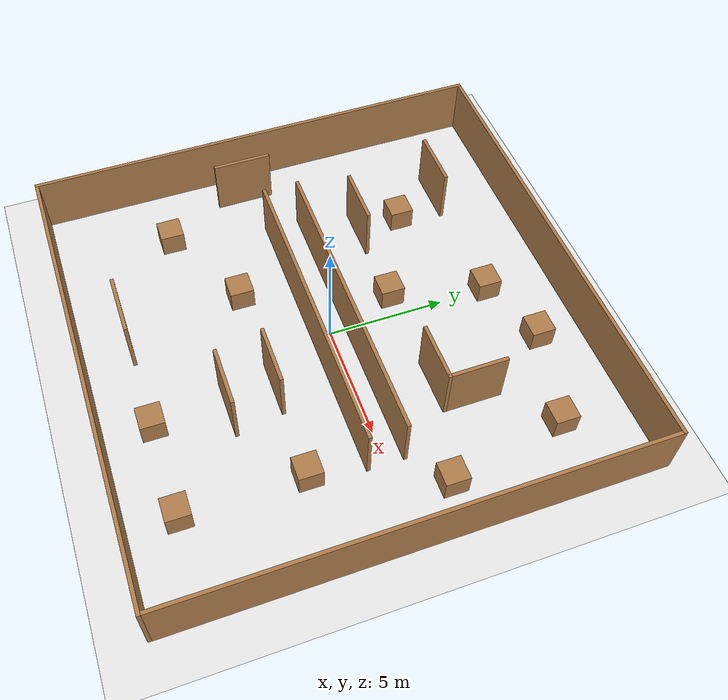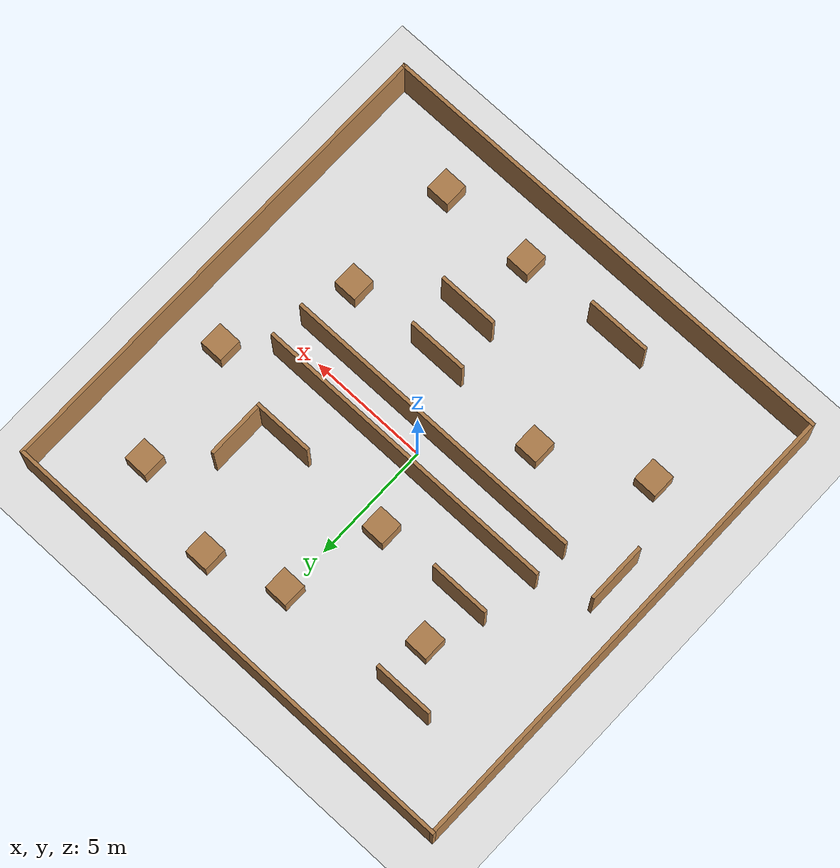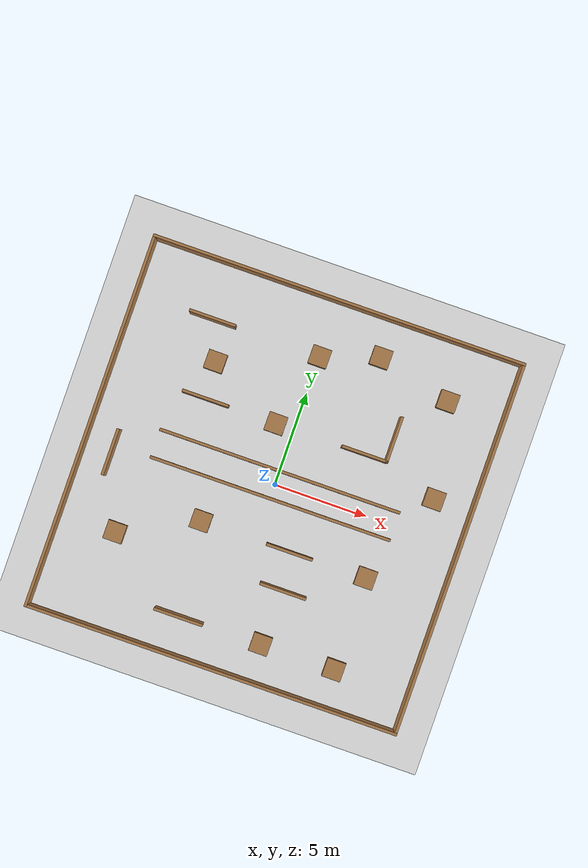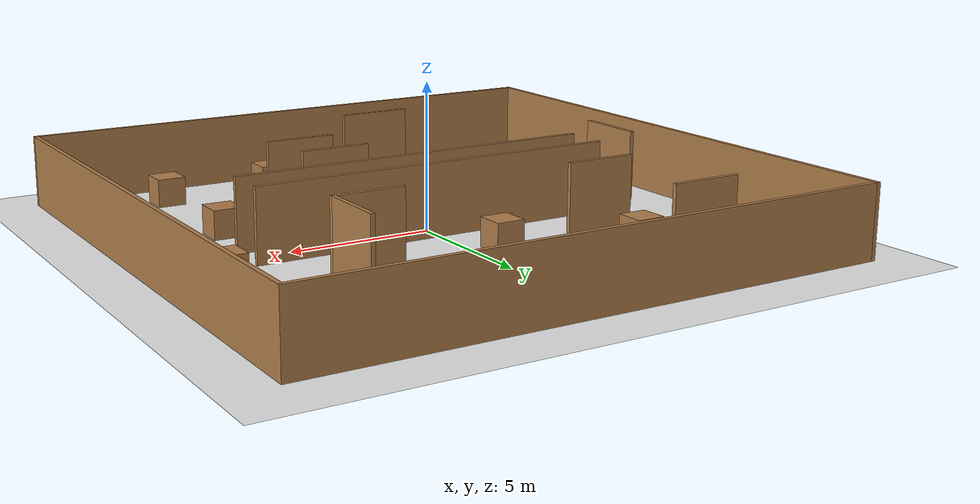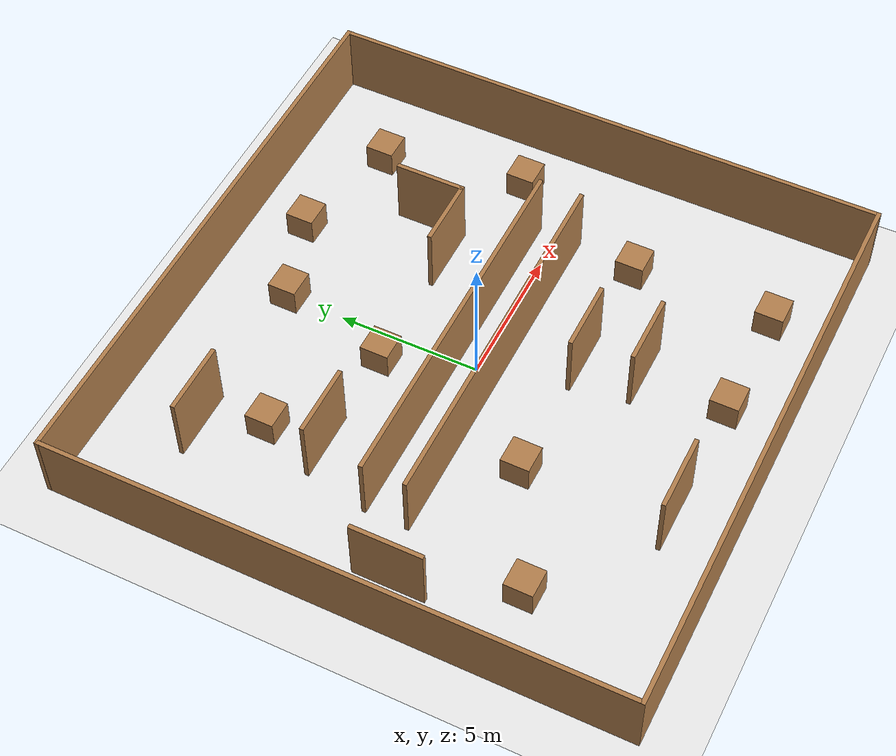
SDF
<sdf version="1.7">
 <world name="default">
  <light name="sun" type="directional">
   <pose>0 0 10 0 -0 0</pose>
   <diffuse>0.8 0.8 0.8 1</diffuse>
   <specular>0.2 0.2 0.2 1</specular>
   <attenuation>
    <range>1000</range>
    <constant>0.9</constant>
    <linear>0.01</linear>
    <quadratic>0.001</quadratic>
   </attenuation>
   <direction>-0.5 0.1 -0.9</direction>
   <spot><inner_angle>0</inner_angle><outer_angle>0</outer_angle><falloff>0</falloff></spot>
  </light>
  <model name="ground_plane">
   <static>1</static>
   <link name="link">
    <collision name="collision">
     <geometry><plane><normal>0 0 1</normal><size>100 100</size></plane></geometry>
     <surface>
      <contact><collide_bitmask>65535</collide_bitmask></contact>
      <friction><ode><mu>100</mu><mu2>50</mu2></ode></friction>
     </surface>
    </collision>
    <visual name="visual">
     <cast_shadows>0</cast_shadows>
     <geometry><plane><normal>0 0 1</normal><size>100 100</size></plane></geometry>
     <material>
      <script><uri>file://media/materials/scripts/gazebo.material</uri><name>Gazebo/White</name></script>
     </material>
    </visual>
   </link>
  </model>
  <gravity>0 0 -9.8</gravity>
  <magnetic_field>6e-06 2.3e-05 -4.2e-05</magnetic_field>
  <atmosphere type="adiabatic"/>
  <physics type="ode">
   <max_step_size>0.001</max_step_size>
   <real_time_factor>1</real_time_factor>
   <real_time_update_rate>1000</real_time_update_rate>
  </physics>
  <scene><ambient>0.4 0.4 0.4 1</ambient><background>0.7 0.7 0.7 1</background><shadows>1</shadows></scene>
  <spherical_coordinates>
   <surface_model>EARTH_WGS84</surface_model>
   <latitude_deg>0</latitude_deg>
   <longitude_deg>0</longitude_deg>
   <elevation>0</elevation>
   <heading_deg>0</heading_deg>
  </spherical_coordinates>
  <model name="complex_env_v2">
   <link name="Wall_10">
    <pose>-5.825 7 0 0 -0 0</pose>
    <visual name="Wall_10_Visual">
     <pose>0 0 1.25 0 -0 0</pose>
     <geometry><box><size>2.5 0.15 2.5</size></box></geometry>
     <material>
      <script><uri>file://media/materials/scripts/gazebo.material</uri><name>Gazebo/Wood</name></script>
      <ambient>1 1 1 1</ambient>
      <shader type="pixel"/>
     </material>
     <meta><layer>0</layer></meta>
    </visual>
    <collision name="Wall_10_Collision">
     <pose>0 0 1.25 0 -0 0</pose>
     <geometry><box><size>2.5 0.15 2.5</size></box></geometry>
     <surface>
      <friction>
       <ode><mu>1</mu><mu2>1</mu2><fdir1>0 0 0</fdir1><slip1>0</slip1><slip2>0</slip2></ode>
       <torsional>
        <coefficient>1</coefficient>
        <patch_radius>0</patch_radius>
        <surface_radius>0</surface_radius>
        <use_patch_radius>1</use_patch_radius>
        <ode><slip>0</slip></ode>
       </torsional>
      </friction>
      <bounce><restitution_coefficient>0</restitution_coefficient><threshold>1e+06</threshold></bounce>
      <contact>
       <collide_without_contact>0</collide_without_contact>
       <collide_without_contact_bitmask>1</collide_without_contact_bitmask>
       <collide_bitmask>1</collide_bitmask>
       <ode>
        <soft_cfm>0</soft_cfm>
        <soft_erp>0.2</soft_erp>
        <kp>1e+13</kp>
        <kd>1</kd>
        <max_vel>0.01</max_vel>
        <min_depth>0</min_depth>
       </ode>
       <bullet>
        <split_impulse>1</split_impulse>
        <split_impulse_penetration_threshold>-0.01</split_impulse_penetration_threshold>
        <soft_cfm>0</soft_cfm>
        <soft_erp>0.2</soft_erp>
        <kp>1e+13</kp>
        <kd>1</kd>
       </bullet>
      </contact>
     </surface>
    </collision>
   </link>
   <link name="Wall_12">
    <pose>-8.5 -1.175 0 0 0 -1.5708</pose>
    <inertial>
     <mass>1</mass>
     <inertia><ixx>1</ixx><ixy>0</ixy><ixz>0</ixz><iyy>1</iyy><iyz>0</iyz><izz>1</izz></inertia>
    </inertial>
    <visual name="Wall_12_Visual">
     <pose>0 0 1.25 0 -0 0</pose>
     <geometry><box><size>2.5 0.15 2.5</size></box></geometry>
     <material>
      <script><uri>file://media/materials/scripts/gazebo.material</uri><name>Gazebo/Wood</name></script>
      <ambient>1 1 1 1</ambient>
      <shader type="pixel"><normal_map>__default__</normal_map></shader>
      <diffuse>1 1 1 1</diffuse>
      <specular>0.2 0.2 0.2 1</specular>
      <emissive>0 0 0 1</emissive>
     </material>
     <meta><layer>0</layer></meta>
    </visual>
    <collision name="Wall_12_Collision">
     <pose>0 0 1.25 0 -0 0</pose>
     <geometry><box><size>2.5 0.15 2.5</size></box></geometry>
     <surface>
      <friction>
       <ode><mu>1</mu><mu2>1</mu2><fdir1>0 0 0</fdir1><slip1>0</slip1><slip2>0</slip2></ode>
       <torsional>
        <coefficient>1</coefficient>
        <patch_radius>0</patch_radius>
        <surface_radius>0</surface_radius>
        <use_patch_radius>1</use_patch_radius>
        <ode><slip>0</slip></ode>
       </torsional>
      </friction>
      <bounce><restitution_coefficient>0</restitution_coefficient><threshold>1e+06</threshold></bounce>
      <contact>
       <collide_without_contact>0</collide_without_contact>
       <collide_without_contact_bitmask>1</collide_without_contact_bitmask>
       <collide_bitmask>1</collide_bitmask>
       <ode>
        <soft_cfm>0</soft_cfm>
        <soft_erp>0.2</soft_erp>
        <kp>1e+13</kp>
        <kd>1</kd>
        <max_vel>0.01</max_vel>
        <min_depth>0</min_depth>
       </ode>
       <bullet>
        <split_impulse>1</split_impulse>
        <split_impulse_penetration_threshold>-0.01</split_impulse_penetration_threshold>
        <soft_cfm>0</soft_cfm>
        <soft_erp>0.2</soft_erp>
        <kp>1e+13</kp>
        <kd>1</kd>
       </bullet>
      </contact>
     </surface>
    </collision>
   </link>
   <link name="Wall_14">
    <pose>-4.825 3.011 0 0 -0 0</pose>
    <visual name="Wall_14_Visual">
     <pose>0 0 1.25 0 -0 0</pose>
     <geometry><box><size>2.5 0.15 2.5</size></box></geometry>
     <material>
      <script><uri>file://media/materials/scripts/gazebo.material</uri><name>Gazebo/Wood</name></script>
      <ambient>1 1 1 1</ambient>
      <shader type="pixel"/>
     </material>
     <meta><layer>0</layer></meta>
    </visual>
    <collision name="Wall_14_Collision">
     <pose>0 0 1.25 0 -0 0</pose>
     <geometry><box><size>2.5 0.15 2.5</size></box></geometry>
     <surface>
      <friction>
       <ode><mu>1</mu><mu2>1</mu2><fdir1>0 0 0</fdir1><slip1>0</slip1><slip2>0</slip2></ode>
       <torsional>
        <coefficient>1</coefficient>
        <patch_radius>0</patch_radius>
        <surface_radius>0</surface_radius>
        <use_patch_radius>1</use_patch_radius>
        <ode><slip>0</slip></ode>
       </torsional>
      </friction>
      <bounce><restitution_coefficient>0</restitution_coefficient><threshold>1e+06</threshold></bounce>
      <contact>
       <collide_without_contact>0</collide_without_contact>
       <collide_without_contact_bitmask>1</collide_without_contact_bitmask>
       <collide_bitmask>1</collide_bitmask>
       <ode>
        <soft_cfm>0</soft_cfm>
        <soft_erp>0.2</soft_erp>
        <kp>1e+13</kp>
        <kd>1</kd>
        <max_vel>0.01</max_vel>
        <min_depth>0</min_depth>
       </ode>
       <bullet>
        <split_impulse>1</split_impulse>
        <split_impulse_penetration_threshold>-0.01</split_impulse_penetration_threshold>
        <soft_cfm>0</soft_cfm>
        <soft_erp>0.2</soft_erp>
        <kp>1e+13</kp>
        <kd>1</kd>
       </bullet>
      </contact>
     </surface>
    </collision>
   </link>
   <link name="Wall_14_clone">
    <pose>0 0.75 0 0 -0 0</pose>
    <inertial>
     <mass>1</mass>
     <inertia><ixx>1</ixx><ixy>0</ixy><ixz>0</ixz><iyy>1</iyy><iyz>0</iyz><izz>1</izz></inertia>
    </inertial>
    <visual name="Wall_14_Visual">
     <pose>0 0 1.25 0 -0 0</pose>
     <geometry><box><size>13 0.15 2.5</size></box></geometry>
     <material>
      <script><uri>file://media/materials/scripts/gazebo.material</uri><name>Gazebo/Wood</name></script>
      <ambient>1 1 1 1</ambient>
      <shader type="pixel"><normal_map>__default__</normal_map></shader>
      <diffuse>1 1 1 1</diffuse>
      <specular>0.2 0.2 0.2 1</specular>
      <emissive>0 0 0 1</emissive>
     </material>
     <meta><layer>0</layer></meta>
    </visual>
    <collision name="Wall_14_Collision">
     <pose>0 0 1.25 0 -0 0</pose>
     <geometry><box><size>13 0.15 2.5</size></box></geometry>
     <surface>
      <friction>
       <ode><mu>1</mu><mu2>1</mu2><fdir1>0 0 0</fdir1><slip1>0</slip1><slip2>0</slip2></ode>
       <torsional>
        <coefficient>1</coefficient>
        <patch_radius>0</patch_radius>
        <surface_radius>0</surface_radius>
        <use_patch_radius>1</use_patch_radius>
        <ode><slip>0</slip></ode>
       </torsional>
      </friction>
      <bounce><restitution_coefficient>0</restitution_coefficient><threshold>1e+06</threshold></bounce>
      <contact>
       <collide_without_contact>0</collide_without_contact>
       <collide_without_contact_bitmask>1</collide_without_contact_bitmask>
       <collide_bitmask>1</collide_bitmask>
       <ode>
        <soft_cfm>0</soft_cfm>
        <soft_erp>0.2</soft_erp>
        <kp>1e+13</kp>
        <kd>1</kd>
        <max_vel>0.01</max_vel>
        <min_depth>0</min_depth>
       </ode>
       <bullet>
        <split_impulse>1</split_impulse>
        <split_impulse_penetration_threshold>-0.01</split_impulse_penetration_threshold>
        <soft_cfm>0</soft_cfm>
        <soft_erp>0.2</soft_erp>
        <kp>1e+13</kp>
        <kd>1</kd>
       </bullet>
      </contact>
     </surface>
    </collision>
   </link>
   <link name="Wall_14_clone_clone">
    <pose>0 -0.75 0 0 -0 0</pose>
    <inertial>
     <mass>1</mass>
     <inertia><ixx>1</ixx><ixy>0</ixy><ixz>0</ixz><iyy>1</iyy><iyz>0</iyz><izz>1</izz></inertia>
    </inertial>
    <visual name="Wall_14_Visual">
     <pose>0 0 1.25 0 -0 0</pose>
     <geometry><box><size>13 0.15 2.5</size></box></geometry>
     <material>
      <script><uri>file://media/materials/scripts/gazebo.material</uri><name>Gazebo/Wood</name></script>
      <ambient>1 1 1 1</ambient>
      <shader type="pixel"><normal_map>__default__</normal_map></shader>
      <diffuse>1 1 1 1</diffuse>
      <specular>0.2 0.2 0.2 1</specular>
      <emissive>0 0 0 1</emissive>
     </material>
     <meta><layer>0</layer></meta>
    </visual>
    <collision name="Wall_14_Collision">
     <pose>0 0 1.25 0 -0 0</pose>
     <geometry><box><size>13 0.15 2.5</size></box></geometry>
     <surface>
      <friction>
       <ode><mu>1</mu><mu2>1</mu2><fdir1>0 0 0</fdir1><slip1>0</slip1><slip2>0</slip2></ode>
       <torsional>
        <coefficient>1</coefficient>
        <patch_radius>0</patch_radius>
        <surface_radius>0</surface_radius>
        <use_patch_radius>1</use_patch_radius>
        <ode><slip>0</slip></ode>
       </torsional>
      </friction>
      <bounce><restitution_coefficient>0</restitution_coefficient><threshold>1e+06</threshold></bounce>
      <contact>
       <collide_without_contact>0</collide_without_contact>
       <collide_without_contact_bitmask>1</collide_without_contact_bitmask>
       <collide_bitmask>1</collide_bitmask>
       <ode>
        <soft_cfm>0</soft_cfm>
        <soft_erp>0.2</soft_erp>
        <kp>1e+13</kp>
        <kd>1</kd>
        <max_vel>0.01</max_vel>
        <min_depth>0</min_depth>
       </ode>
       <bullet>
        <split_impulse>1</split_impulse>
        <split_impulse_penetration_threshold>-0.01</split_impulse_penetration_threshold>
        <soft_cfm>0</soft_cfm>
        <soft_erp>0.2</soft_erp>
        <kp>1e+13</kp>
        <kd>1</kd>
       </bullet>
      </contact>
     </surface>
    </collision>
   </link>
   <link name="Wall_16">
    <pose>-2.451 -8 0 0 -0 0</pose>
    <inertial>
     <mass>1</mass>
     <inertia><ixx>1</ixx><ixy>0</ixy><ixz>0</ixz><iyy>1</iyy><iyz>0</iyz><izz>1</izz></inertia>
    </inertial>
    <visual name="Wall_16_Visual">
     <pose>0 0 1.25 0 -0 0</pose>
     <geometry><box><size>2.65 0.15 2.5</size></box></geometry>
     <material>
      <script><uri>file://media/materials/scripts/gazebo.material</uri><name>Gazebo/Wood</name></script>
      <ambient>1 1 1 1</ambient>
      <shader type="pixel"><normal_map>__default__</normal_map></shader>
      <diffuse>1 1 1 1</diffuse>
      <specular>0.2 0.2 0.2 1</specular>
      <emissive>0 0 0 1</emissive>
     </material>
     <meta><layer>0</layer></meta>
    </visual>
    <collision name="Wall_16_Collision">
     <pose>0 0 1.25 0 -0 0</pose>
     <geometry><box><size>2.65 0.15 2.5</size></box></geometry>
     <surface>
      <friction>
       <ode><mu>1</mu><mu2>1</mu2><fdir1>0 0 0</fdir1><slip1>0</slip1><slip2>0</slip2></ode>
       <torsional>
        <coefficient>1</coefficient>
        <patch_radius>0</patch_radius>
        <surface_radius>0</surface_radius>
        <use_patch_radius>1</use_patch_radius>
        <ode><slip>0</slip></ode>
       </torsional>
      </friction>
      <bounce><restitution_coefficient>0</restitution_coefficient><threshold>1e+06</threshold></bounce>
      <contact>
       <collide_without_contact>0</collide_without_contact>
       <collide_without_contact_bitmask>1</collide_without_contact_bitmask>
       <collide_bitmask>1</collide_bitmask>
       <ode>
        <soft_cfm>0</soft_cfm>
        <soft_erp>0.2</soft_erp>
        <kp>1e+13</kp>
        <kd>1</kd>
        <max_vel>0.01</max_vel>
        <min_depth>0</min_depth>
       </ode>
       <bullet>
        <split_impulse>1</split_impulse>
        <split_impulse_penetration_threshold>-0.01</split_impulse_penetration_threshold>
        <soft_cfm>0</soft_cfm>
        <soft_erp>0.2</soft_erp>
        <kp>1e+13</kp>
        <kd>1</kd>
       </bullet>
      </contact>
     </surface>
    </collision>
   </link>
   <link name="Wall_18">
    <pose>2.175 -5 0 0 -0 0</pose>
    <inertial>
     <mass>1</mass>
     <inertia><ixx>1</ixx><ixy>0</ixy><ixz>0</ixz><iyy>1</iyy><iyz>0</iyz><izz>1</izz></inertia>
    </inertial>
    <visual name="Wall_18_Visual">
     <pose>0 0 1.25 0 -0 0</pose>
     <geometry><box><size>2.5 0.15 2.5</size></box></geometry>
     <material>
      <script><uri>file://media/materials/scripts/gazebo.material</uri><name>Gazebo/Wood</name></script>
      <ambient>1 1 1 1</ambient>
      <shader type="pixel"><normal_map>__default__</normal_map></shader>
      <diffuse>1 1 1 1</diffuse>
      <specular>0.2 0.2 0.2 1</specular>
      <emissive>0 0 0 1</emissive>
     </material>
     <meta><layer>0</layer></meta>
    </visual>
    <collision name="Wall_18_Collision">
     <pose>0 0 1.25 0 -0 0</pose>
     <geometry><box><size>2.5 0.15 2.5</size></box></geometry>
     <surface>
      <friction>
       <ode><mu>1</mu><mu2>1</mu2><fdir1>0 0 0</fdir1><slip1>0</slip1><slip2>0</slip2></ode>
       <torsional>
        <coefficient>1</coefficient>
        <patch_radius>0</patch_radius>
        <surface_radius>0</surface_radius>
        <use_patch_radius>1</use_patch_radius>
        <ode><slip>0</slip></ode>
       </torsional>
      </friction>
      <bounce><restitution_coefficient>0</restitution_coefficient><threshold>1e+06</threshold></bounce>
      <contact>
       <collide_without_contact>0</collide_without_contact>
       <collide_without_contact_bitmask>1</collide_without_contact_bitmask>
       <collide_bitmask>1</collide_bitmask>
       <ode>
        <soft_cfm>0</soft_cfm>
        <soft_erp>0.2</soft_erp>
        <kp>1e+13</kp>
        <kd>1</kd>
        <max_vel>0.01</max_vel>
        <min_depth>0</min_depth>
       </ode>
       <bullet>
        <split_impulse>1</split_impulse>
        <split_impulse_penetration_threshold>-0.01</split_impulse_penetration_threshold>
        <soft_cfm>0</soft_cfm>
        <soft_erp>0.2</soft_erp>
        <kp>1e+13</kp>
        <kd>1</kd>
       </bullet>
      </contact>
     </surface>
    </collision>
   </link>
   <link name="Wall_2">
    <pose>3e-06 10 0 0 -0 0</pose>
    <inertial>
     <mass>1</mass>
     <inertia><ixx>1</ixx><ixy>0</ixy><ixz>0</ixz><iyy>1</iyy><iyz>0</iyz><izz>1</izz></inertia>
    </inertial>
    <visual name="Wall_2_Visual">
     <pose>0 0 1.25 0 -0 0</pose>
     <geometry><box><size>20.15 0.15 2.5</size></box></geometry>
     <material>
      <script><uri>file://media/materials/scripts/gazebo.material</uri><name>Gazebo/Wood</name></script>
      <ambient>1 1 1 1</ambient>
      <shader type="pixel"><normal_map>__default__</normal_map></shader>
     </material>
     <meta><layer>0</layer></meta>
    </visual>
    <collision name="Wall_2_Collision">
     <pose>0 0 1.25 0 -0 0</pose>
     <geometry><box><size>20.15 0.15 2.5</size></box></geometry>
     <surface>
      <friction>
       <ode><mu>1</mu><mu2>1</mu2><fdir1>0 0 0</fdir1><slip1>0</slip1><slip2>0</slip2></ode>
       <torsional>
        <coefficient>1</coefficient>
        <patch_radius>0</patch_radius>
        <surface_radius>0</surface_radius>
        <use_patch_radius>1</use_patch_radius>
        <ode><slip>0</slip></ode>
       </torsional>
      </friction>
      <bounce><restitution_coefficient>0</restitution_coefficient><threshold>1e+06</threshold></bounce>
      <contact>
       <collide_without_contact>0</collide_without_contact>
       <collide_without_contact_bitmask>1</collide_without_contact_bitmask>
       <collide_bitmask>1</collide_bitmask>
       <ode>
        <soft_cfm>0</soft_cfm>
        <soft_erp>0.2</soft_erp>
        <kp>1e+13</kp>
        <kd>1</kd>
        <max_vel>0.01</max_vel>
        <min_depth>0</min_depth>
       </ode>
       <bullet>
        <split_impulse>1</split_impulse>
        <split_impulse_penetration_threshold>-0.01</split_impulse_penetration_threshold>
        <soft_cfm>0</soft_cfm>
        <soft_erp>0.2</soft_erp>
        <kp>1e+13</kp>
        <kd>1</kd>
       </bullet>
      </contact>
     </surface>
    </collision>
   </link>
   <link name="Wall_20">
    <pose>1.825 -3 0 0 -0 0</pose>
    <inertial>
     <mass>1</mass>
     <inertia><ixx>1</ixx><ixy>0</ixy><ixz>0</ixz><iyy>1</iyy><iyz>0</iyz><izz>1</izz></inertia>
    </inertial>
    <visual name="Wall_20_Visual">
     <pose>0 0 1.25 0 -0 0</pose>
     <geometry><box><size>2.5 0.15 2.5</size></box></geometry>
     <material>
      <script><uri>file://media/materials/scripts/gazebo.material</uri><name>Gazebo/Wood</name></script>
      <ambient>1 1 1 1</ambient>
      <shader type="pixel"><normal_map>__default__</normal_map></shader>
      <diffuse>1 1 1 1</diffuse>
      <specular>0.2 0.2 0.2 1</specular>
      <emissive>0 0 0 1</emissive>
     </material>
     <meta><layer>0</layer></meta>
    </visual>
    <collision name="Wall_20_Collision">
     <pose>0 0 1.25 0 -0 0</pose>
     <geometry><box><size>2.5 0.15 2.5</size></box></geometry>
     <surface>
      <friction>
       <ode><mu>1</mu><mu2>1</mu2><fdir1>0 0 0</fdir1><slip1>0</slip1><slip2>0</slip2></ode>
       <torsional>
        <coefficient>1</coefficient>
        <patch_radius>0</patch_radius>
        <surface_radius>0</surface_radius>
        <use_patch_radius>1</use_patch_radius>
        <ode><slip>0</slip></ode>
       </torsional>
      </friction>
      <bounce><restitution_coefficient>0</restitution_coefficient><threshold>1e+06</threshold></bounce>
      <contact>
       <collide_without_contact>0</collide_without_contact>
       <collide_without_contact_bitmask>1</collide_without_contact_bitmask>
       <collide_bitmask>1</collide_bitmask>
       <ode>
        <soft_cfm>0</soft_cfm>
        <soft_erp>0.2</soft_erp>
        <kp>1e+13</kp>
        <kd>1</kd>
        <max_vel>0.01</max_vel>
        <min_depth>0</min_depth>
       </ode>
       <bullet>
        <split_impulse>1</split_impulse>
        <split_impulse_penetration_threshold>-0.01</split_impulse_penetration_threshold>
        <soft_cfm>0</soft_cfm>
        <soft_erp>0.2</soft_erp>
        <kp>1e+13</kp>
        <kd>1</kd>
       </bullet>
      </contact>
     </surface>
    </collision>
   </link>
   <link name="Wall_22">
    <pose>5 4.175 0 0 0 -1.5708</pose>
    <inertial>
     <mass>1</mass>
     <inertia><ixx>1</ixx><ixy>0</ixy><ixz>0</ixz><iyy>1</iyy><iyz>0</iyz><izz>1</izz></inertia>
    </inertial>
    <visual name="Wall_22_Visual">
     <pose>0 0 1.25 0 -0 0</pose>
     <geometry><box><size>2.5 0.15 2.5</size></box></geometry>
     <material>
      <script><uri>file://media/materials/scripts/gazebo.material</uri><name>Gazebo/Wood</name></script>
      <ambient>1 1 1 1</ambient>
      <shader type="pixel"><normal_map>__default__</normal_map></shader>
      <diffuse>1 1 1 1</diffuse>
      <specular>0.2 0.2 0.2 1</specular>
      <emissive>0 0 0 1</emissive>
     </material>
     <meta><layer>0</layer></meta>
    </visual>
    <collision name="Wall_22_Collision">
     <pose>0 0 1.25 0 -0 0</pose>
     <geometry><box><size>2.5 0.15 2.5</size></box></geometry>
     <surface>
      <friction>
       <ode><mu>1</mu><mu2>1</mu2><fdir1>0 0 0</fdir1><slip1>0</slip1><slip2>0</slip2></ode>
       <torsional>
        <coefficient>1</coefficient>
        <patch_radius>0</patch_radius>
        <surface_radius>0</surface_radius>
        <use_patch_radius>1</use_patch_radius>
        <ode><slip>0</slip></ode>
       </torsional>
      </friction>
      <bounce><restitution_coefficient>0</restitution_coefficient><threshold>1e+06</threshold></bounce>
      <contact>
       <collide_without_contact>0</collide_without_contact>
       <collide_without_contact_bitmask>1</collide_without_contact_bitmask>
       <collide_bitmask>1</collide_bitmask>
       <ode>
        <soft_cfm>0</soft_cfm>
        <soft_erp>0.2</soft_erp>
        <kp>1e+13</kp>
        <kd>1</kd>
        <max_vel>0.01</max_vel>
        <min_depth>0</min_depth>
       </ode>
       <bullet>
        <split_impulse>1</split_impulse>
        <split_impulse_penetration_threshold>-0.01</split_impulse_penetration_threshold>
        <soft_cfm>0</soft_cfm>
        <soft_erp>0.2</soft_erp>
        <kp>1e+13</kp>
        <kd>1</kd>
       </bullet>
      </contact>
     </surface>
    </collision>
   </link>
   <link name="Wall_24">
    <pose>3.825 3 0 0 -0 3.14159</pose>
    <inertial>
     <mass>1</mass>
     <inertia><ixx>1</ixx><ixy>0</ixy><ixz>0</ixz><iyy>1</iyy><iyz>0</iyz><izz>1</izz></inertia>
    </inertial>
    <visual name="Wall_24_Visual">
     <pose>0 0 1.25 0 -0 0</pose>
     <geometry><box><size>2.5 0.15 2.5</size></box></geometry>
     <material>
      <script><uri>file://media/materials/scripts/gazebo.material</uri><name>Gazebo/Wood</name></script>
      <ambient>1 1 1 1</ambient>
      <shader type="pixel"><normal_map>__default__</normal_map></shader>
      <diffuse>1 1 1 1</diffuse>
      <specular>0.2 0.2 0.2 1</specular>
      <emissive>0 0 0 1</emissive>
     </material>
     <meta><layer>0</layer></meta>
    </visual>
    <collision name="Wall_24_Collision">
     <pose>0 0 1.25 0 -0 0</pose>
     <geometry><box><size>2.5 0.15 2.5</size></box></geometry>
     <surface>
      <friction>
       <ode><mu>1</mu><mu2>1</mu2><fdir1>0 0 0</fdir1><slip1>0</slip1><slip2>0</slip2></ode>
       <torsional>
        <coefficient>1</coefficient>
        <patch_radius>0</patch_radius>
        <surface_radius>0</surface_radius>
        <use_patch_radius>1</use_patch_radius>
        <ode><slip>0</slip></ode>
       </torsional>
      </friction>
      <bounce><restitution_coefficient>0</restitution_coefficient><threshold>1e+06</threshold></bounce>
      <contact>
       <collide_without_contact>0</collide_without_contact>
       <collide_without_contact_bitmask>1</collide_without_contact_bitmask>
       <collide_bitmask>1</collide_bitmask>
       <ode>
        <soft_cfm>0</soft_cfm>
        <soft_erp>0.2</soft_erp>
        <kp>1e+13</kp>
        <kd>1</kd>
        <max_vel>0.01</max_vel>
        <min_depth>0</min_depth>
       </ode>
       <bullet>
        <split_impulse>1</split_impulse>
        <split_impulse_penetration_threshold>-0.01</split_impulse_penetration_threshold>
        <soft_cfm>0</soft_cfm>
        <soft_erp>0.2</soft_erp>
        <kp>1e+13</kp>
        <kd>1</kd>
       </bullet>
      </contact>
     </surface>
    </collision>
   </link>
   <link name="Wall_4">
    <pose>-10 3e-06 0 0 0 -1.5708</pose>
    <inertial>
     <mass>1</mass>
     <inertia><ixx>1</ixx><ixy>0</ixy><ixz>0</ixz><iyy>1</iyy><iyz>0</iyz><izz>1</izz></inertia>
    </inertial>
    <visual name="Wall_4_Visual">
     <pose>0 0 1.25 0 -0 0</pose>
     <geometry><box><size>20.15 0.15 2.5</size></box></geometry>
     <material>
      <script><uri>file://media/materials/scripts/gazebo.material</uri><name>Gazebo/Wood</name></script>
      <ambient>1 1 1 1</ambient>
      <shader type="pixel"><normal_map>__default__</normal_map></shader>
     </material>
     <meta><layer>0</layer></meta>
    </visual>
    <collision name="Wall_4_Collision">
     <pose>0 0 1.25 0 -0 0</pose>
     <geometry><box><size>20.15 0.15 2.5</size></box></geometry>
     <surface>
      <friction>
       <ode><mu>1</mu><mu2>1</mu2><fdir1>0 0 0</fdir1><slip1>0</slip1><slip2>0</slip2></ode>
       <torsional>
        <coefficient>1</coefficient>
        <patch_radius>0</patch_radius>
        <surface_radius>0</surface_radius>
        <use_patch_radius>1</use_patch_radius>
        <ode><slip>0</slip></ode>
       </torsional>
      </friction>
      <bounce><restitution_coefficient>0</restitution_coefficient><threshold>1e+06</threshold></bounce>
      <contact>
       <collide_without_contact>0</collide_without_contact>
       <collide_without_contact_bitmask>1</collide_without_contact_bitmask>
       <collide_bitmask>1</collide_bitmask>
       <ode>
        <soft_cfm>0</soft_cfm>
        <soft_erp>0.2</soft_erp>
        <kp>1e+13</kp>
        <kd>1</kd>
        <max_vel>0.01</max_vel>
        <min_depth>0</min_depth>
       </ode>
       <bullet>
        <split_impulse>1</split_impulse>
        <split_impulse_penetration_threshold>-0.01</split_impulse_penetration_threshold>
        <soft_cfm>0</soft_cfm>
        <soft_erp>0.2</soft_erp>
        <kp>1e+13</kp>
        <kd>1</kd>
       </bullet>
      </contact>
     </surface>
    </collision>
   </link>
   <link name="Wall_6">
    <pose>-3e-06 -10 0 0 -0 0</pose>
    <inertial>
     <mass>1</mass>
     <inertia><ixx>1</ixx><ixy>0</ixy><ixz>0</ixz><iyy>1</iyy><iyz>0</iyz><izz>1</izz></inertia>
    </inertial>
    <visual name="Wall_6_Visual">
     <pose>0 0 1.25 0 -0 0</pose>
     <geometry><box><size>20.15 0.15 2.5</size></box></geometry>
     <material>
      <script><uri>file://media/materials/scripts/gazebo.material</uri><name>Gazebo/Wood</name></script>
      <ambient>1 1 1 1</ambient>
      <shader type="pixel"><normal_map>__default__</normal_map></shader>
     </material>
     <meta><layer>0</layer></meta>
    </visual>
    <collision name="Wall_6_Collision">
     <pose>0 0 1.25 0 -0 0</pose>
     <geometry><box><size>20.15 0.15 2.5</size></box></geometry>
     <surface>
      <friction>
       <ode><mu>1</mu><mu2>1</mu2><fdir1>0 0 0</fdir1><slip1>0</slip1><slip2>0</slip2></ode>
       <torsional>
        <coefficient>1</coefficient>
        <patch_radius>0</patch_radius>
        <surface_radius>0</surface_radius>
        <use_patch_radius>1</use_patch_radius>
        <ode><slip>0</slip></ode>
       </torsional>
      </friction>
      <bounce><restitution_coefficient>0</restitution_coefficient><threshold>1e+06</threshold></bounce>
      <contact>
       <collide_without_contact>0</collide_without_contact>
       <collide_without_contact_bitmask>1</collide_without_contact_bitmask>
       <collide_bitmask>1</collide_bitmask>
       <ode>
        <soft_cfm>0</soft_cfm>
        <soft_erp>0.2</soft_erp>
        <kp>1e+13</kp>
        <kd>1</kd>
        <max_vel>0.01</max_vel>
        <min_depth>0</min_depth>
       </ode>
       <bullet>
        <split_impulse>1</split_impulse>
        <split_impulse_penetration_threshold>-0.01</split_impulse_penetration_threshold>
        <soft_cfm>0</soft_cfm>
        <soft_erp>0.2</soft_erp>
        <kp>1e+13</kp>
        <kd>1</kd>
       </bullet>
      </contact>
     </surface>
    </collision>
   </link>
   <link name="Wall_8">
    <pose>10 -2e-06 0 0 0 -1.5708</pose>
    <visual name="Wall_8_Visual">
     <pose>0 0 1.25 0 -0 0</pose>
     <geometry><box><size>20.15 0.15 2.5</size></box></geometry>
     <material>
      <script><uri>file://media/materials/scripts/gazebo.material</uri><name>Gazebo/Wood</name></script>
      <ambient>1 1 1 1</ambient>
      <shader type="pixel"/>
     </material>
     <meta><layer>0</layer></meta>
    </visual>
    <collision name="Wall_8_Collision">
     <pose>0 0 1.25 0 -0 0</pose>
     <geometry><box><size>20.15 0.15 2.5</size></box></geometry>
     <surface>
      <friction>
       <ode><mu>1</mu><mu2>1</mu2><fdir1>0 0 0</fdir1><slip1>0</slip1><slip2>0</slip2></ode>
       <torsional>
        <coefficient>1</coefficient>
        <patch_radius>0</patch_radius>
        <surface_radius>0</surface_radius>
        <use_patch_radius>1</use_patch_radius>
        <ode><slip>0</slip></ode>
       </torsional>
      </friction>
      <bounce><restitution_coefficient>0</restitution_coefficient><threshold>1e+06</threshold></bounce>
      <contact>
       <collide_without_contact>0</collide_without_contact>
       <collide_without_contact_bitmask>1</collide_without_contact_bitmask>
       <collide_bitmask>1</collide_bitmask>
       <ode>
        <soft_cfm>0</soft_cfm>
        <soft_erp>0.2</soft_erp>
        <kp>1e+13</kp>
        <kd>1</kd>
        <max_vel>0.01</max_vel>
        <min_depth>0</min_depth>
       </ode>
       <bullet>
        <split_impulse>1</split_impulse>
        <split_impulse_penetration_threshold>-0.01</split_impulse_penetration_threshold>
        <soft_cfm>0</soft_cfm>
        <soft_erp>0.2</soft_erp>
        <kp>1e+13</kp>
        <kd>1</kd>
       </bullet>
      </contact>
     </surface>
    </collision>
   </link>
   <link name="link_0">
    <inertial>
     <mass>1</mass>
     <inertia>
      <ixx>0.166667</ixx>
      <ixy>0</ixy>
      <ixz>0</ixz>
      <iyy>0.166667</iyy>
      <iyz>0</iyz>
      <izz>0.166667</izz>
     </inertia>
    </inertial>
    <pose>-5 5 0.5 0 -0 1.56388</pose>
    <visual name="visual">
     <geometry><box><size>1 1 1</size></box></geometry>
     <material>
      <lighting>1</lighting>
      <script><uri>file://media/materials/scripts/gazebo.material</uri><name>Gazebo/Wood</name></script>
      <shader type="pixel"><normal_map>__default__</normal_map></shader>
      <ambient>0.3 0.3 0.3 1</ambient>
      <diffuse>0.7 0.7 0.7 1</diffuse>
      <specular>0.01 0.01 0.01 1</specular>
      <emissive>0 0 0 1</emissive>
     </material>
    </visual>
    <collision name="collision">
     <geometry><box><size>1 1 1</size></box></geometry>
     <surface>
      <friction>
       <ode><mu>1</mu><mu2>1</mu2><fdir1>0 0 0</fdir1><slip1>0</slip1><slip2>0</slip2></ode>
       <torsional>
        <coefficient>1</coefficient>
        <patch_radius>0</patch_radius>
        <surface_radius>0</surface_radius>
        <use_patch_radius>1</use_patch_radius>
        <ode><slip>0</slip></ode>
       </torsional>
      </friction>
      <bounce><restitution_coefficient>0</restitution_coefficient><threshold>1e+06</threshold></bounce>
      <contact>
       <collide_without_contact>0</collide_without_contact>
       <collide_without_contact_bitmask>1</collide_without_contact_bitmask>
       <collide_bitmask>1</collide_bitmask>
       <ode>
        <soft_cfm>0</soft_cfm>
        <soft_erp>0.2</soft_erp>
        <kp>1e+13</kp>
        <kd>1</kd>
        <max_vel>0.01</max_vel>
        <min_depth>0</min_depth>
       </ode>
       <bullet>
        <split_impulse>1</split_impulse>
        <split_impulse_penetration_threshold>-0.01</split_impulse_penetration_threshold>
        <soft_cfm>0</soft_cfm>
        <soft_erp>0.2</soft_erp>
        <kp>1e+13</kp>
        <kd>1</kd>
       </bullet>
      </contact>
     </surface>
    </collision>
   </link>
   <link name="link_1">
    <inertial>
     <mass>1</mass>
     <inertia>
      <ixx>0.166667</ixx>
      <ixy>0</ixy>
      <ixz>0</ixz>
      <iyy>0.166667</iyy>
      <iyz>0</iyz>
      <izz>0.166667</izz>
     </inertia>
    </inertial>
    <pose>7 7 0.5 0 -0 1.56388</pose>
    <visual name="visual">
     <geometry><box><size>1 1 1</size></box></geometry>
     <material>
      <lighting>1</lighting>
      <script><uri>file://media/materials/scripts/gazebo.material</uri><name>Gazebo/Wood</name></script>
      <shader type="pixel"><normal_map>__default__</normal_map></shader>
      <ambient>0.3 0.3 0.3 1</ambient>
      <diffuse>0.7 0.7 0.7 1</diffuse>
      <specular>0.01 0.01 0.01 1</specular>
      <emissive>0 0 0 1</emissive>
     </material>
    </visual>
    <collision name="collision">
     <geometry><box><size>1 1 1</size></box></geometry>
     <surface>
      <friction>
       <ode><mu>1</mu><mu2>1</mu2><fdir1>0 0 0</fdir1><slip1>0</slip1><slip2>0</slip2></ode>
       <torsional>
        <coefficient>1</coefficient>
        <patch_radius>0</patch_radius>
        <surface_radius>0</surface_radius>
        <use_patch_radius>1</use_patch_radius>
        <ode><slip>0</slip></ode>
       </torsional>
      </friction>
      <bounce><restitution_coefficient>0</restitution_coefficient><threshold>1e+06</threshold></bounce>
      <contact>
       <collide_without_contact>0</collide_without_contact>
       <collide_without_contact_bitmask>1</collide_without_contact_bitmask>
       <collide_bitmask>1</collide_bitmask>
       <ode>
        <soft_cfm>0</soft_cfm>
        <soft_erp>0.2</soft_erp>
        <kp>1e+13</kp>
        <kd>1</kd>
        <max_vel>0.01</max_vel>
        <min_depth>0</min_depth>
       </ode>
       <bullet>
        <split_impulse>1</split_impulse>
        <split_impulse_penetration_threshold>-0.01</split_impulse_penetration_threshold>
        <soft_cfm>0</soft_cfm>
        <soft_erp>0.2</soft_erp>
        <kp>1e+13</kp>
        <kd>1</kd>
       </bullet>
      </contact>
     </surface>
    </collision>
   </link>
   <link name="link_10">
    <inertial>
     <mass>1</mass>
     <inertia>
      <ixx>0.166667</ixx>
      <ixy>0</ixy>
      <ixz>0</ixz>
      <iyy>0.166667</iyy>
      <iyz>0</iyz>
      <izz>0.166667</izz>
     </inertia>
    </inertial>
    <pose>6 -8 0.5 0 -0 1.56388</pose>
    <visual name="visual">
     <geometry><box><size>1 1 1</size></box></geometry>
     <material>
      <lighting>1</lighting>
      <script><uri>file://media/materials/scripts/gazebo.material</uri><name>Gazebo/Wood</name></script>
      <shader type="pixel"><normal_map>__default__</normal_map></shader>
      <ambient>0.3 0.3 0.3 1</ambient>
      <diffuse>0.7 0.7 0.7 1</diffuse>
      <specular>0.01 0.01 0.01 1</specular>
      <emissive>0 0 0 1</emissive>
     </material>
    </visual>
    <collision name="collision">
     <geometry><box><size>1 1 1</size></box></geometry>
     <surface>
      <friction>
       <ode><mu>1</mu><mu2>1</mu2><fdir1>0 0 0</fdir1><slip1>0</slip1><slip2>0</slip2></ode>
       <torsional>
        <coefficient>1</coefficient>
        <patch_radius>0</patch_radius>
        <surface_radius>0</surface_radius>
        <use_patch_radius>1</use_patch_radius>
        <ode><slip>0</slip></ode>
       </torsional>
      </friction>
      <bounce><restitution_coefficient>0</restitution_coefficient><threshold>1e+06</threshold></bounce>
      <contact>
       <collide_without_contact>0</collide_without_contact>
       <collide_without_contact_bitmask>1</collide_without_contact_bitmask>
       <collide_bitmask>1</collide_bitmask>
       <ode>
        <soft_cfm>0</soft_cfm>
        <soft_erp>0.2</soft_erp>
        <kp>1e+13</kp>
        <kd>1</kd>
        <max_vel>0.01</max_vel>
        <min_depth>0</min_depth>
       </ode>
       <bullet>
        <split_impulse>1</split_impulse>
        <split_impulse_penetration_threshold>-0.01</split_impulse_penetration_threshold>
        <soft_cfm>0</soft_cfm>
        <soft_erp>0.2</soft_erp>
        <kp>1e+13</kp>
        <kd>1</kd>
       </bullet>
      </contact>
     </surface>
    </collision>
   </link>
   <link name="link_11">
    <inertial>
     <mass>1</mass>
     <inertia>
      <ixx>0.166667</ixx>
      <ixy>0</ixy>
      <ixz>0</ixz>
      <iyy>0.166667</iyy>
      <iyz>0</iyz>
      <izz>0.166667</izz>
     </inertia>
    </inertial>
    <pose>6 -3 0.5 0 -0 1.56388</pose>
    <visual name="visual">
     <geometry><box><size>1 1 1</size></box></geometry>
     <material>
      <lighting>1</lighting>
      <script><uri>file://media/materials/scripts/gazebo.material</uri><name>Gazebo/Wood</name></script>
      <shader type="pixel"><normal_map>__default__</normal_map></shader>
      <ambient>0.3 0.3 0.3 1</ambient>
      <diffuse>0.7 0.7 0.7 1</diffuse>
      <specular>0.01 0.01 0.01 1</specular>
      <emissive>0 0 0 1</emissive>
     </material>
    </visual>
    <collision name="collision">
     <geometry><box><size>1 1 1</size></box></geometry>
     <surface>
      <friction>
       <ode><mu>1</mu><mu2>1</mu2><fdir1>0 0 0</fdir1><slip1>0</slip1><slip2>0</slip2></ode>
       <torsional>
        <coefficient>1</coefficient>
        <patch_radius>0</patch_radius>
        <surface_radius>0</surface_radius>
        <use_patch_radius>1</use_patch_radius>
        <ode><slip>0</slip></ode>
       </torsional>
      </friction>
      <bounce><restitution_coefficient>0</restitution_coefficient><threshold>1e+06</threshold></bounce>
      <contact>
       <collide_without_contact>0</collide_without_contact>
       <collide_without_contact_bitmask>1</collide_without_contact_bitmask>
       <collide_bitmask>1</collide_bitmask>
       <ode>
        <soft_cfm>0</soft_cfm>
        <soft_erp>0.2</soft_erp>
        <kp>1e+13</kp>
        <kd>1</kd>
        <max_vel>0.01</max_vel>
        <min_depth>0</min_depth>
       </ode>
       <bullet>
        <split_impulse>1</split_impulse>
        <split_impulse_penetration_threshold>-0.01</split_impulse_penetration_threshold>
        <soft_cfm>0</soft_cfm>
        <soft_erp>0.2</soft_erp>
        <kp>1e+13</kp>
        <kd>1</kd>
       </bullet>
      </contact>
     </surface>
    </collision>
   </link>
   <link name="link_13">
    <inertial>
     <mass>1</mass>
     <inertia>
      <ixx>0.166667</ixx>
      <ixy>0</ixy>
      <ixz>0</ixz>
      <iyy>0.166667</iyy>
      <iyz>0</iyz>
      <izz>0.166667</izz>
     </inertia>
    </inertial>
    <pose>8 2 0.5 0 -0 1.56388</pose>
    <visual name="visual">
     <geometry><box><size>1 1 1</size></box></geometry>
     <material>
      <lighting>1</lighting>
      <script><uri>file://media/materials/scripts/gazebo.material</uri><name>Gazebo/Wood</name></script>
      <shader type="pixel"><normal_map>__default__</normal_map></shader>
      <ambient>0.3 0.3 0.3 1</ambient>
      <diffuse>0.7 0.7 0.7 1</diffuse>
      <specular>0.01 0.01 0.01 1</specular>
      <emissive>0 0 0 1</emissive>
     </material>
    </visual>
    <collision name="collision">
     <geometry><box><size>1 1 1</size></box></geometry>
     <surface>
      <friction>
       <ode><mu>1</mu><mu2>1</mu2><fdir1>0 0 0</fdir1><slip1>0</slip1><slip2>0</slip2></ode>
       <torsional>
        <coefficient>1</coefficient>
        <patch_radius>0</patch_radius>
        <surface_radius>0</surface_radius>
        <use_patch_radius>1</use_patch_radius>
        <ode><slip>0</slip></ode>
       </torsional>
      </friction>
      <bounce><restitution_coefficient>0</restitution_coefficient><threshold>1e+06</threshold></bounce>
      <contact>
       <collide_without_contact>0</collide_without_contact>
       <collide_without_contact_bitmask>1</collide_without_contact_bitmask>
       <collide_bitmask>1</collide_bitmask>
       <ode>
        <soft_cfm>0</soft_cfm>
        <soft_erp>0.2</soft_erp>
        <kp>1e+13</kp>
        <kd>1</kd>
        <max_vel>0.01</max_vel>
        <min_depth>0</min_depth>
       </ode>
       <bullet>
        <split_impulse>1</split_impulse>
        <split_impulse_penetration_threshold>-0.01</split_impulse_penetration_threshold>
        <soft_cfm>0</soft_cfm>
        <soft_erp>0.2</soft_erp>
        <kp>1e+13</kp>
        <kd>1</kd>
       </bullet>
      </contact>
     </surface>
    </collision>
   </link>
   <link name="link_2">
    <inertial>
     <mass>1</mass>
     <inertia>
      <ixx>0.166667</ixx>
      <ixy>0</ixy>
      <ixz>0</ixz>
      <iyy>0.166667</iyy>
      <iyz>0</iyz>
      <izz>0.166667</izz>
     </inertia>
    </inertial>
    <pose>3 8 0.5 0 -0 1.56388</pose>
    <visual name="visual">
     <geometry><box><size>1 1 1</size></box></geometry>
     <material>
      <lighting>1</lighting>
      <script><uri>file://media/materials/scripts/gazebo.material</uri><name>Gazebo/Wood</name></script>
      <shader type="pixel"><normal_map>__default__</normal_map></shader>
      <ambient>0.3 0.3 0.3 1</ambient>
      <diffuse>0.7 0.7 0.7 1</diffuse>
      <specular>0.01 0.01 0.01 1</specular>
      <emissive>0 0 0 1</emissive>
     </material>
    </visual>
    <collision name="collision">
     <geometry><box><size>1 1 1</size></box></geometry>
     <surface>
      <friction>
       <ode><mu>1</mu><mu2>1</mu2><fdir1>0 0 0</fdir1><slip1>0</slip1><slip2>0</slip2></ode>
       <torsional>
        <coefficient>1</coefficient>
        <patch_radius>0</patch_radius>
        <surface_radius>0</surface_radius>
        <use_patch_radius>1</use_patch_radius>
        <ode><slip>0</slip></ode>
       </torsional>
      </friction>
      <bounce><restitution_coefficient>0</restitution_coefficient><threshold>1e+06</threshold></bounce>
      <contact>
       <collide_without_contact>0</collide_without_contact>
       <collide_without_contact_bitmask>1</collide_without_contact_bitmask>
       <collide_bitmask>1</collide_bitmask>
       <ode>
        <soft_cfm>0</soft_cfm>
        <soft_erp>0.2</soft_erp>
        <kp>1e+13</kp>
        <kd>1</kd>
        <max_vel>0.01</max_vel>
        <min_depth>0</min_depth>
       </ode>
       <bullet>
        <split_impulse>1</split_impulse>
        <split_impulse_penetration_threshold>-0.01</split_impulse_penetration_threshold>
        <soft_cfm>0</soft_cfm>
        <soft_erp>0.2</soft_erp>
        <kp>1e+13</kp>
        <kd>1</kd>
       </bullet>
      </contact>
     </surface>
    </collision>
   </link>
   <link name="link_3">
    <inertial>
     <mass>1</mass>
     <inertia>
      <ixx>0.166667</ixx>
      <ixy>0</ixy>
      <ixz>0</ixz>
      <iyy>0.166667</iyy>
      <iyz>0</iyz>
      <izz>0.166667</izz>
     </inertia>
    </inertial>
    <pose>1e-06 7 0.5 0 -0 1.56388</pose>
    <visual name="visual">
     <geometry><box><size>1 1 1</size></box></geometry>
     <material>
      <lighting>1</lighting>
      <script><uri>file://media/materials/scripts/gazebo.material</uri><name>Gazebo/Wood</name></script>
      <shader type="pixel"><normal_map>__default__</normal_map></shader>
      <ambient>0.3 0.3 0.3 1</ambient>
      <diffuse>0.7 0.7 0.7 1</diffuse>
      <specular>0.01 0.01 0.01 1</specular>
      <emissive>0 0 0 1</emissive>
     </material>
    </visual>
    <collision name="collision">
     <geometry><box><size>1 1 1</size></box></geometry>
     <surface>
      <friction>
       <ode><mu>1</mu><mu2>1</mu2><fdir1>0 0 0</fdir1><slip1>0</slip1><slip2>0</slip2></ode>
       <torsional>
        <coefficient>1</coefficient>
        <patch_radius>0</patch_radius>
        <surface_radius>0</surface_radius>
        <use_patch_radius>1</use_patch_radius>
        <ode><slip>0</slip></ode>
       </torsional>
      </friction>
      <bounce><restitution_coefficient>0</restitution_coefficient><threshold>1e+06</threshold></bounce>
      <contact>
       <collide_without_contact>0</collide_without_contact>
       <collide_without_contact_bitmask>1</collide_without_contact_bitmask>
       <collide_bitmask>1</collide_bitmask>
       <ode>
        <soft_cfm>0</soft_cfm>
        <soft_erp>0.2</soft_erp>
        <kp>1e+13</kp>
        <kd>1</kd>
        <max_vel>0.01</max_vel>
        <min_depth>0</min_depth>
       </ode>
       <bullet>
        <split_impulse>1</split_impulse>
        <split_impulse_penetration_threshold>-0.01</split_impulse_penetration_threshold>
        <soft_cfm>0</soft_cfm>
        <soft_erp>0.2</soft_erp>
        <kp>1e+13</kp>
        <kd>1</kd>
       </bullet>
      </contact>
     </surface>
    </collision>
   </link>
   <link name="link_4">
    <inertial>
     <mass>1</mass>
     <inertia>
      <ixx>0.166667</ixx>
      <ixy>0</ixy>
      <ixz>0</ixz>
      <iyy>0.166667</iyy>
      <iyz>0</iyz>
      <izz>0.166667</izz>
     </inertia>
    </inertial>
    <pose>-7 -5 0.5 0 -0 1.56388</pose>
    <visual name="visual">
     <geometry><box><size>1 1 1</size></box></geometry>
     <material>
      <lighting>1</lighting>
      <script><uri>file://media/materials/scripts/gazebo.material</uri><name>Gazebo/Wood</name></script>
      <shader type="pixel"><normal_map>__default__</normal_map></shader>
      <ambient>0.3 0.3 0.3 1</ambient>
      <diffuse>0.7 0.7 0.7 1</diffuse>
      <specular>0.01 0.01 0.01 1</specular>
      <emissive>0 0 0 1</emissive>
     </material>
    </visual>
    <collision name="collision">
     <geometry><box><size>1 1 1</size></box></geometry>
     <surface>
      <friction>
       <ode><mu>1</mu><mu2>1</mu2><fdir1>0 0 0</fdir1><slip1>0</slip1><slip2>0</slip2></ode>
       <torsional>
        <coefficient>1</coefficient>
        <patch_radius>0</patch_radius>
        <surface_radius>0</surface_radius>
        <use_patch_radius>1</use_patch_radius>
        <ode><slip>0</slip></ode>
       </torsional>
      </friction>
      <bounce><restitution_coefficient>0</restitution_coefficient><threshold>1e+06</threshold></bounce>
      <contact>
       <collide_without_contact>0</collide_without_contact>
       <collide_without_contact_bitmask>1</collide_without_contact_bitmask>
       <collide_bitmask>1</collide_bitmask>
       <ode>
        <soft_cfm>0</soft_cfm>
        <soft_erp>0.2</soft_erp>
        <kp>1e+13</kp>
        <kd>1</kd>
        <max_vel>0.01</max_vel>
        <min_depth>0</min_depth>
       </ode>
       <bullet>
        <split_impulse>1</split_impulse>
        <split_impulse_penetration_threshold>-0.01</split_impulse_penetration_threshold>
        <soft_cfm>0</soft_cfm>
        <soft_erp>0.2</soft_erp>
        <kp>1e+13</kp>
        <kd>1</kd>
       </bullet>
      </contact>
     </surface>
    </collision>
   </link>
   <link name="link_5">
    <inertial>
     <mass>1</mass>
     <inertia>
      <ixx>0.166667</ixx>
      <ixy>0</ixy>
      <ixz>0</ixz>
      <iyy>0.166667</iyy>
      <iyz>0</iyz>
      <izz>0.166667</izz>
     </inertia>
    </inertial>
    <pose>-3 -3 0.5 0 -0 1.56388</pose>
    <visual name="visual">
     <geometry><box><size>1 1 1</size></box></geometry>
     <material>
      <lighting>1</lighting>
      <script><uri>file://media/materials/scripts/gazebo.material</uri><name>Gazebo/Wood</name></script>
      <shader type="pixel"><normal_map>__default__</normal_map></shader>
      <ambient>0.3 0.3 0.3 1</ambient>
      <diffuse>0.7 0.7 0.7 1</diffuse>
      <specular>0.01 0.01 0.01 1</specular>
      <emissive>0 0 0 1</emissive>
     </material>
    </visual>
    <collision name="collision">
     <geometry><box><size>1 1 1</size></box></geometry>
     <surface>
      <friction>
       <ode><mu>1</mu><mu2>1</mu2><fdir1>0 0 0</fdir1><slip1>0</slip1><slip2>0</slip2></ode>
       <torsional>
        <coefficient>1</coefficient>
        <patch_radius>0</patch_radius>
        <surface_radius>0</surface_radius>
        <use_patch_radius>1</use_patch_radius>
        <ode><slip>0</slip></ode>
       </torsional>
      </friction>
      <bounce><restitution_coefficient>0</restitution_coefficient><threshold>1e+06</threshold></bounce>
      <contact>
       <collide_without_contact>0</collide_without_contact>
       <collide_without_contact_bitmask>1</collide_without_contact_bitmask>
       <collide_bitmask>1</collide_bitmask>
       <ode>
        <soft_cfm>0</soft_cfm>
        <soft_erp>0.2</soft_erp>
        <kp>1e+13</kp>
        <kd>1</kd>
        <max_vel>0.01</max_vel>
        <min_depth>0</min_depth>
       </ode>
       <bullet>
        <split_impulse>1</split_impulse>
        <split_impulse_penetration_threshold>-0.01</split_impulse_penetration_threshold>
        <soft_cfm>0</soft_cfm>
        <soft_erp>0.2</soft_erp>
        <kp>1e+13</kp>
        <kd>1</kd>
       </bullet>
      </contact>
     </surface>
    </collision>
   </link>
   <link name="link_7">
    <inertial>
     <mass>1</mass>
     <inertia>
      <ixx>0.166667</ixx>
      <ixy>0</ixy>
      <ixz>0</ixz>
      <iyy>0.166667</iyy>
      <iyz>0</iyz>
      <izz>0.166667</izz>
     </inertia>
    </inertial>
    <pose>-1 3 0.5 0 -0 1.56388</pose>
    <visual name="visual">
     <geometry><box><size>1 1 1</size></box></geometry>
     <material>
      <lighting>1</lighting>
      <script><uri>file://media/materials/scripts/gazebo.material</uri><name>Gazebo/Wood</name></script>
      <shader type="pixel"><normal_map>__default__</normal_map></shader>
      <ambient>0.3 0.3 0.3 1</ambient>
      <diffuse>0.7 0.7 0.7 1</diffuse>
      <specular>0.01 0.01 0.01 1</specular>
      <emissive>0 0 0 1</emissive>
     </material>
    </visual>
    <collision name="collision">
     <geometry><box><size>1 1 1</size></box></geometry>
     <surface>
      <friction>
       <ode><mu>1</mu><mu2>1</mu2><fdir1>0 0 0</fdir1><slip1>0</slip1><slip2>0</slip2></ode>
       <torsional>
        <coefficient>1</coefficient>
        <patch_radius>0</patch_radius>
        <surface_radius>0</surface_radius>
        <use_patch_radius>1</use_patch_radius>
        <ode><slip>0</slip></ode>
       </torsional>
      </friction>
      <bounce><restitution_coefficient>0</restitution_coefficient><threshold>1e+06</threshold></bounce>
      <contact>
       <collide_without_contact>0</collide_without_contact>
       <collide_without_contact_bitmask>1</collide_without_contact_bitmask>
       <collide_bitmask>1</collide_bitmask>
       <ode>
        <soft_cfm>0</soft_cfm>
        <soft_erp>0.2</soft_erp>
        <kp>1e+13</kp>
        <kd>1</kd>
        <max_vel>0.01</max_vel>
        <min_depth>0</min_depth>
       </ode>
       <bullet>
        <split_impulse>1</split_impulse>
        <split_impulse_penetration_threshold>-0.01</split_impulse_penetration_threshold>
        <soft_cfm>0</soft_cfm>
        <soft_erp>0.2</soft_erp>
        <kp>1e+13</kp>
        <kd>1</kd>
       </bullet>
      </contact>
     </surface>
    </collision>
   </link>
   <link name="link_9">
    <inertial>
     <mass>1</mass>
     <inertia>
      <ixx>0.166667</ixx>
      <ixy>0</ixy>
      <ixz>0</ixz>
      <iyy>0.166667</iyy>
      <iyz>0</iyz>
      <izz>0.166667</izz>
     </inertia>
    </inertial>
    <pose>2 -8 0.5 0 -0 1.56388</pose>
    <visual name="visual">
     <geometry><box><size>1 1 1</size></box></geometry>
     <material>
      <lighting>1</lighting>
      <script><uri>file://media/materials/scripts/gazebo.material</uri><name>Gazebo/Wood</name></script>
      <shader type="pixel"><normal_map>__default__</normal_map></shader>
      <ambient>0.3 0.3 0.3 1</ambient>
      <diffuse>0.7 0.7 0.7 1</diffuse>
      <specular>0.01 0.01 0.01 1</specular>
      <emissive>0 0 0 1</emissive>
     </material>
    </visual>
    <collision name="collision">
     <geometry><box><size>1 1 1</size></box></geometry>
     <surface>
      <friction>
       <ode><mu>1</mu><mu2>1</mu2><fdir1>0 0 0</fdir1><slip1>0</slip1><slip2>0</slip2></ode>
       <torsional>
        <coefficient>1</coefficient>
        <patch_radius>0</patch_radius>
        <surface_radius>0</surface_radius>
        <use_patch_radius>1</use_patch_radius>
        <ode><slip>0</slip></ode>
       </torsional>
      </friction>
      <bounce><restitution_coefficient>0</restitution_coefficient><threshold>1e+06</threshold></bounce>
      <contact>
       <collide_without_contact>0</collide_without_contact>
       <collide_without_contact_bitmask>1</collide_without_contact_bitmask>
       <collide_bitmask>1</collide_bitmask>
       <ode>
        <soft_cfm>0</soft_cfm>
        <soft_erp>0.2</soft_erp>
        <kp>1e+13</kp>
        <kd>1</kd>
        <max_vel>0.01</max_vel>
        <min_depth>0</min_depth>
       </ode>
       <bullet>
        <split_impulse>1</split_impulse>
        <split_impulse_penetration_threshold>-0.01</split_impulse_penetration_threshold>
        <soft_cfm>0</soft_cfm>
        <soft_erp>0.2</soft_erp>
        <kp>1e+13</kp>
        <kd>1</kd>
       </bullet>
      </contact>
     </surface>
    </collision>
   </link>
   <static>1</static>
  </model>
 </world>
</sdf>
